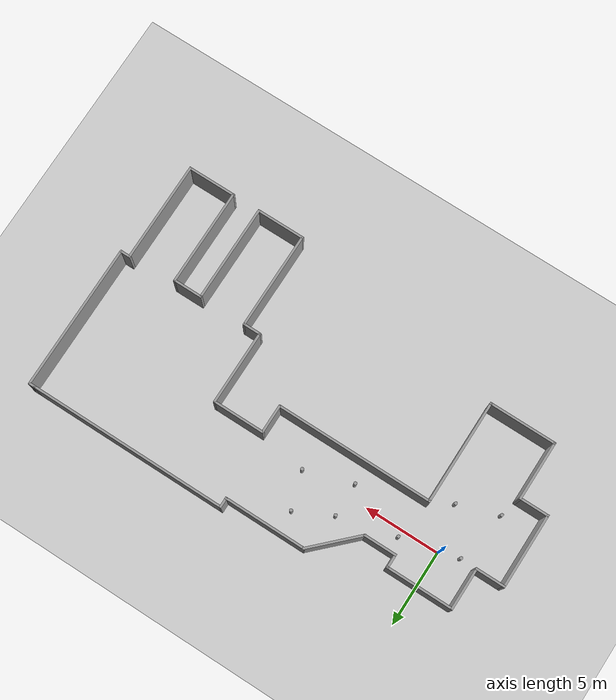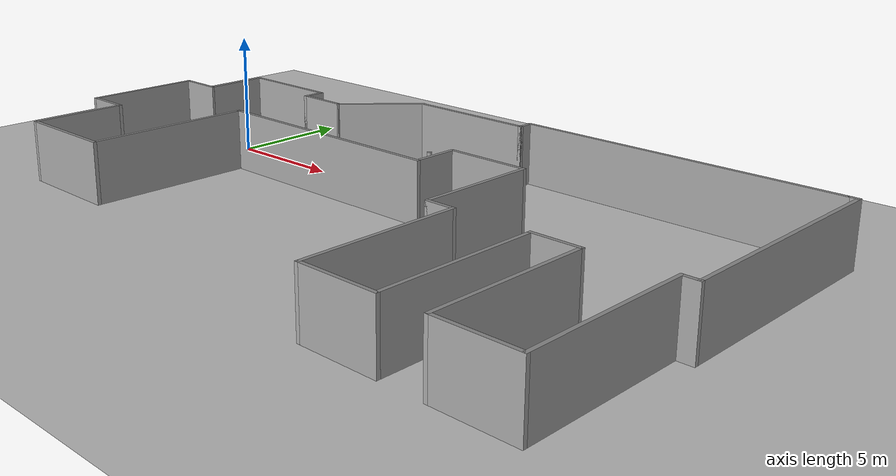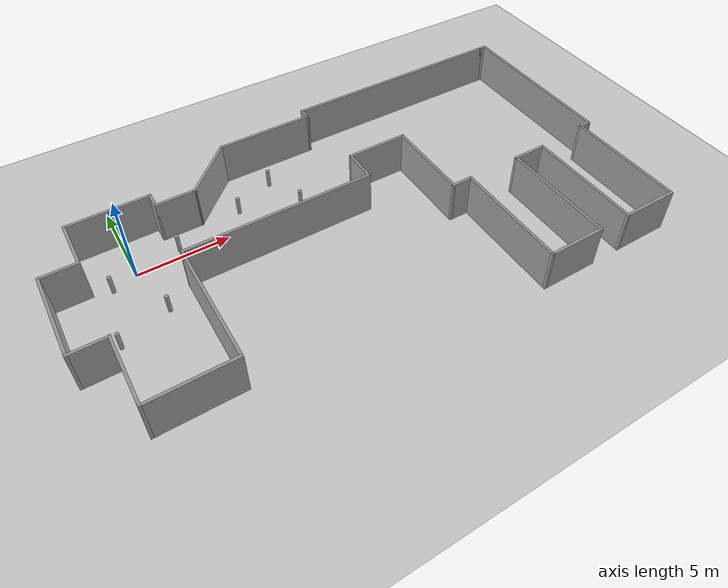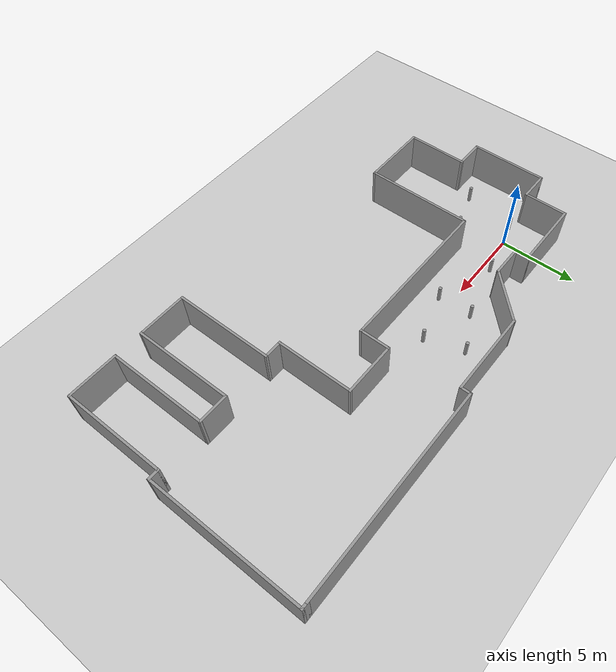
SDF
<sdf version="1.6">
 <world name="default">
  <model name="ground_plane">
   <static>1</static>
   <link name="link">
    <collision name="collision">
     <geometry><plane><normal>0 0 1</normal><size>100 100</size></plane></geometry>
     <surface>
      <contact><collide_bitmask>65535</collide_bitmask></contact>
      <friction><ode><mu>100</mu><mu2>50</mu2></ode></friction>
     </surface>
    </collision>
    <visual name="visual">
     <cast_shadows>0</cast_shadows>
     <geometry><plane><normal>0 0 1</normal><size>100 100</size></plane></geometry>
     <material>
      <script><uri>file://media/materials/scripts/gazebo.material</uri><name>Gazebo/Grey</name></script>
     </material>
    </visual>
   </link>
  </model>
  <model name="hospitalMel">
   <pose>10.7024 -3.26958 0 0 -0 0</pose>
   <link name="Wall_0">
    <collision name="Wall_0_Collision">
     <geometry><box><size>2.75 0.15 2.5</size></box></geometry>
     <pose>0 0 1.25 0 -0 0</pose>
    </collision>
    <visual name="Wall_0_Visual">
     <pose>0 0 1.25 0 -0 0</pose>
     <geometry><box><size>2.75 0.15 2.5</size></box></geometry>
     <material>
      <script><uri>file://media/materials/scripts/gazebo.material</uri><name>Gazebo/Grey</name></script>
      <ambient>1 1 1 1</ambient>
     </material>
     <meta><layer>0</layer></meta>
    </visual>
    <pose>-12.9706 4.50442 0 0 -0 1.5708</pose>
   </link>
   <link name="Wall_10">
    <collision name="Wall_10_Collision">
     <geometry><box><size>13.25 0.15 2.5</size></box></geometry>
     <pose>0 0 1.25 0 -0 0</pose>
    </collision>
    <visual name="Wall_10_Visual">
     <pose>0 0 1.25 0 -0 0</pose>
     <geometry><box><size>13.25 0.15 2.5</size></box></geometry>
     <material>
      <script><uri>file://media/materials/scripts/gazebo.material</uri><name>Gazebo/Grey</name></script>
      <ambient>1 1 1 1</ambient>
     </material>
     <meta><layer>0</layer></meta>
    </visual>
    <pose>7.925 8.1 0 0 -0 0</pose>
   </link>
   <link name="Wall_16">
    <collision name="Wall_16_Collision">
     <geometry><box><size>0.5 0.15 2.5</size></box></geometry>
     <pose>0 0 1.25 0 -0 0</pose>
    </collision>
    <visual name="Wall_16_Visual">
     <pose>0 0 1.25 0 -0 0</pose>
     <geometry><box><size>0.5 0.15 2.5</size></box></geometry>
     <material>
      <script><uri>file://media/materials/scripts/gazebo.material</uri><name>Gazebo/Grey</name></script>
      <ambient>1 1 1 1</ambient>
     </material>
     <meta><layer>0</layer></meta>
    </visual>
    <pose>14.65 8.1 0 0 -0 0</pose>
   </link>
   <link name="Wall_18">
    <collision name="Wall_18_Collision">
     <geometry><box><size>9.75 0.15 2.5</size></box></geometry>
     <pose>0 0 1.25 0 -0 0</pose>
    </collision>
    <visual name="Wall_18_Visual">
     <pose>0 0 1.25 0 -0 0</pose>
     <geometry><box><size>9.75 0.15 2.5</size></box></geometry>
     <material>
      <script><uri>file://media/materials/scripts/gazebo.material</uri><name>Gazebo/Grey</name></script>
      <ambient>1 1 1 1</ambient>
     </material>
     <meta><layer>0</layer></meta>
    </visual>
    <pose>14.825 3.3 0 0 -0 -1.5708</pose>
   </link>
   <link name="Wall_19">
    <collision name="Wall_19_Collision">
     <geometry><box><size>0.75 0.15 2.5</size></box></geometry>
     <pose>0 0 1.25 0 -0 0</pose>
    </collision>
    <visual name="Wall_19_Visual">
     <pose>0 0 1.25 0 -0 0</pose>
     <geometry><box><size>0.75 0.15 2.5</size></box></geometry>
     <material>
      <script><uri>file://media/materials/scripts/gazebo.material</uri><name>Gazebo/Grey</name></script>
      <ambient>1 1 1 1</ambient>
     </material>
     <meta><layer>0</layer></meta>
    </visual>
    <pose>14.525 -1.5 0 0 -0 3.14159</pose>
   </link>
   <link name="Wall_21">
    <collision name="Wall_21_Collision">
     <geometry><box><size>6.75 0.15 2.5</size></box></geometry>
     <pose>0 0 1.25 0 -0 0</pose>
    </collision>
    <visual name="Wall_21_Visual">
     <pose>0 0 1.25 0 -0 0</pose>
     <geometry><box><size>6.75 0.15 2.5</size></box></geometry>
     <material>
      <script><uri>file://media/materials/scripts/gazebo.material</uri><name>Gazebo/Grey</name></script>
      <ambient>1 1 1 1</ambient>
     </material>
     <meta><layer>0</layer></meta>
    </visual>
    <pose>14.225 -4.8 0 0 -0 -1.5708</pose>
   </link>
   <link name="Wall_22">
    <collision name="Wall_22_Collision">
     <geometry><box><size>3.25 0.15 2.5</size></box></geometry>
     <pose>0 0 1.25 0 -0 0</pose>
    </collision>
    <visual name="Wall_22_Visual">
     <pose>0 0 1.25 0 -0 0</pose>
     <geometry><box><size>3.25 0.15 2.5</size></box></geometry>
     <material>
      <script><uri>file://media/materials/scripts/gazebo.material</uri><name>Gazebo/Grey</name></script>
      <ambient>1 1 1 1</ambient>
     </material>
     <meta><layer>0</layer></meta>
    </visual>
    <pose>12.675 -8.1 0 0 -0 3.14159</pose>
   </link>
   <link name="Wall_23">
    <collision name="Wall_23_Collision">
     <geometry><box><size>6.5 0.15 2.5</size></box></geometry>
     <pose>0 0 1.25 0 -0 0</pose>
    </collision>
    <visual name="Wall_23_Visual">
     <pose>0 0 1.25 0 -0 0</pose>
     <geometry><box><size>6.5 0.15 2.5</size></box></geometry>
     <material>
      <script><uri>file://media/materials/scripts/gazebo.material</uri><name>Gazebo/Grey</name></script>
      <ambient>1 1 1 1</ambient>
     </material>
     <meta><layer>0</layer></meta>
    </visual>
    <pose>11.125 -4.925 0 0 -0 1.5708</pose>
   </link>
   <link name="Wall_24">
    <collision name="Wall_24_Collision">
     <geometry><box><size>2 0.15 2.5</size></box></geometry>
     <pose>0 0 1.25 0 -0 0</pose>
    </collision>
    <visual name="Wall_24_Visual">
     <pose>0 0 1.25 0 -0 0</pose>
     <geometry><box><size>2 0.15 2.5</size></box></geometry>
     <material>
      <script><uri>file://media/materials/scripts/gazebo.material</uri><name>Gazebo/Grey</name></script>
      <ambient>1 1 1 1</ambient>
     </material>
     <meta><layer>0</layer></meta>
    </visual>
    <pose>10.2 -1.75 0 0 -0 3.14159</pose>
   </link>
   <link name="Wall_25">
    <collision name="Wall_25_Collision">
     <geometry><box><size>6.5 0.15 2.5</size></box></geometry>
     <pose>0 0 1.25 0 -0 0</pose>
    </collision>
    <visual name="Wall_25_Visual">
     <pose>0 0 1.25 0 -0 0</pose>
     <geometry><box><size>6.5 0.15 2.5</size></box></geometry>
     <material>
      <script><uri>file://media/materials/scripts/gazebo.material</uri><name>Gazebo/Grey</name></script>
      <ambient>1 1 1 1</ambient>
     </material>
     <meta><layer>0</layer></meta>
    </visual>
    <pose>9.275 -4.925 0 0 -0 -1.5708</pose>
   </link>
   <link name="Wall_26">
    <collision name="Wall_26_Collision">
     <geometry><box><size>3.25 0.15 2.5</size></box></geometry>
     <pose>0 0 1.25 0 -0 0</pose>
    </collision>
    <visual name="Wall_26_Visual">
     <pose>0 0 1.25 0 -0 0</pose>
     <geometry><box><size>3.25 0.15 2.5</size></box></geometry>
     <material>
      <script><uri>file://media/materials/scripts/gazebo.material</uri><name>Gazebo/Grey</name></script>
      <ambient>1 1 1 1</ambient>
     </material>
     <meta><layer>0</layer></meta>
    </visual>
    <pose>7.725 -8.1 0 0 -0 3.14159</pose>
   </link>
   <link name="Wall_27">
    <collision name="Wall_27_Collision">
     <geometry><box><size>6.5 0.15 2.5</size></box></geometry>
     <pose>0 0 1.25 0 -0 0</pose>
    </collision>
    <visual name="Wall_27_Visual">
     <pose>0 0 1.25 0 -0 0</pose>
     <geometry><box><size>6.5 0.15 2.5</size></box></geometry>
     <material>
      <script><uri>file://media/materials/scripts/gazebo.material</uri><name>Gazebo/Grey</name></script>
      <ambient>1 1 1 1</ambient>
     </material>
     <meta><layer>0</layer></meta>
    </visual>
    <pose>6.175 -4.925 0 0 -0 1.5708</pose>
   </link>
   <link name="Wall_28">
    <collision name="Wall_28_Collision">
     <geometry><box><size>1.25 0.15 2.5</size></box></geometry>
     <pose>0 0 1.25 0 -0 0</pose>
    </collision>
    <visual name="Wall_28_Visual">
     <pose>0 0 1.25 0 -0 0</pose>
     <geometry><box><size>1.25 0.15 2.5</size></box></geometry>
     <material>
      <script><uri>file://media/materials/scripts/gazebo.material</uri><name>Gazebo/Grey</name></script>
      <ambient>1 1 1 1</ambient>
     </material>
     <meta><layer>0</layer></meta>
    </visual>
    <pose>5.625 -1.75 0 0 -0 3.14159</pose>
   </link>
   <link name="Wall_29">
    <collision name="Wall_29_Collision">
     <geometry><box><size>5 0.15 2.5</size></box></geometry>
     <pose>0 0 1.25 0 -0 0</pose>
    </collision>
    <visual name="Wall_29_Visual">
     <pose>0 0 1.25 0 -0 0</pose>
     <geometry><box><size>5 0.15 2.5</size></box></geometry>
     <material>
      <script><uri>file://media/materials/scripts/gazebo.material</uri><name>Gazebo/Grey</name></script>
      <ambient>1 1 1 1</ambient>
     </material>
     <meta><layer>0</layer></meta>
    </visual>
    <pose>5.075 0.675 0 0 -0 1.5708</pose>
   </link>
   <link name="Wall_3">
    <collision name="Wall_3_Collision">
     <geometry><box><size>4.5 0.15 2.5</size></box></geometry>
     <pose>0 0 1.25 0 -0 0</pose>
    </collision>
    <visual name="Wall_3_Visual">
     <pose>0 0 1.25 0 -0 0</pose>
     <geometry><box><size>4.5 0.15 2.5</size></box></geometry>
     <material>
      <script><uri>file://media/materials/scripts/gazebo.material</uri><name>Gazebo/Grey</name></script>
      <ambient>1 1 1 1</ambient>
     </material>
     <meta><layer>0</layer></meta>
    </visual>
    <pose>-10.7956 5.80442 0 0 -0 0</pose>
   </link>
   <link name="Wall_30">
    <collision name="Wall_30_Collision">
     <geometry><box><size>3.5 0.15 2.5</size></box></geometry>
     <pose>0 0 1.25 0 -0 0</pose>
    </collision>
    <visual name="Wall_30_Visual">
     <pose>0 0 1.25 0 -0 0</pose>
     <geometry><box><size>3.5 0.15 2.5</size></box></geometry>
     <material>
      <script><uri>file://media/materials/scripts/gazebo.material</uri><name>Gazebo/Grey</name></script>
      <ambient>1 1 1 1</ambient>
     </material>
     <meta><layer>0</layer></meta>
    </visual>
    <pose>3.4 3.1 0 0 -0 3.14159</pose>
   </link>
   <link name="Wall_31">
    <collision name="Wall_31_Collision">
     <geometry><box><size>2 0.15 2.5</size></box></geometry>
     <pose>0 0 1.25 0 -0 0</pose>
    </collision>
    <visual name="Wall_31_Visual">
     <pose>0 0 1.25 0 -0 0</pose>
     <geometry><box><size>2 0.15 2.5</size></box></geometry>
     <material>
      <script><uri>file://media/materials/scripts/gazebo.material</uri><name>Gazebo/Grey</name></script>
      <ambient>1 1 1 1</ambient>
     </material>
     <meta><layer>0</layer></meta>
    </visual>
    <pose>1.725 2.175 0 0 -0 -1.5708</pose>
   </link>
   <link name="Wall_32">
    <collision name="Wall_32_Collision">
     <geometry><box><size>10.5 0.15 2.5</size></box></geometry>
     <pose>0 0 1.25 0 -0 0</pose>
    </collision>
    <visual name="Wall_32_Visual">
     <pose>0 0 1.25 0 -0 0</pose>
     <geometry><box><size>10.5 0.15 2.5</size></box></geometry>
     <material>
      <script><uri>file://media/materials/scripts/gazebo.material</uri><name>Gazebo/Grey</name></script>
      <ambient>1 1 1 1</ambient>
     </material>
     <meta><layer>0</layer></meta>
    </visual>
    <pose>-3.45 1.25 0 0 -0 3.14159</pose>
   </link>
   <link name="Wall_33">
    <collision name="Wall_33_Collision">
     <geometry><box><size>7 0.15 2.5</size></box></geometry>
     <pose>0 0 1.25 0 -0 0</pose>
    </collision>
    <visual name="Wall_33_Visual">
     <pose>0 0 1.25 0 -0 0</pose>
     <geometry><box><size>7 0.15 2.5</size></box></geometry>
     <material>
      <script><uri>file://media/materials/scripts/gazebo.material</uri><name>Gazebo/Grey</name></script>
      <ambient>1 1 1 1</ambient>
     </material>
     <meta><layer>0</layer></meta>
    </visual>
    <pose>-8.625 -2.175 0 0 -0 -1.5708</pose>
   </link>
   <link name="Wall_34">
    <collision name="Wall_34_Collision">
     <geometry><box><size>4.5 0.15 2.5</size></box></geometry>
     <pose>0 0 1.25 0 -0 0</pose>
    </collision>
    <visual name="Wall_34_Visual">
     <pose>0 0 1.25 0 -0 0</pose>
     <geometry><box><size>4.5 0.15 2.5</size></box></geometry>
     <material>
      <script><uri>file://media/materials/scripts/gazebo.material</uri><name>Gazebo/Grey</name></script>
      <ambient>1 1 1 1</ambient>
     </material>
     <meta><layer>0</layer></meta>
    </visual>
    <pose>-10.8 -5.6 0 0 -0 3.14159</pose>
   </link>
   <link name="Wall_35">
    <collision name="Wall_35_Collision">
     <geometry><box><size>4 0.15 2.5</size></box></geometry>
     <pose>0 0 1.25 0 -0 0</pose>
    </collision>
    <visual name="Wall_35_Visual">
     <pose>0 0 1.25 0 -0 0</pose>
     <geometry><box><size>4 0.15 2.5</size></box></geometry>
     <material>
      <script><uri>file://media/materials/scripts/gazebo.material</uri><name>Gazebo/Grey</name></script>
      <ambient>1 1 1 1</ambient>
     </material>
     <meta><layer>0</layer></meta>
    </visual>
    <pose>-12.975 -3.675 0 0 -0 1.5708</pose>
   </link>
   <link name="Wall_36">
    <collision name="Wall_36_Collision">
     <geometry><box><size>2 0.15 2.5</size></box></geometry>
     <pose>0 0 1.25 0 -0 0</pose>
    </collision>
    <visual name="Wall_36_Visual">
     <pose>0 0 1.25 0 -0 0</pose>
     <geometry><box><size>2 0.15 2.5</size></box></geometry>
     <material>
      <script><uri>file://media/materials/scripts/gazebo.material</uri><name>Gazebo/Grey</name></script>
      <ambient>1 1 1 1</ambient>
     </material>
     <meta><layer>0</layer></meta>
    </visual>
    <pose>-13.9 -1.75 0 0 -0 3.14159</pose>
   </link>
   <link name="Wall_37">
    <collision name="Wall_37_Collision">
     <geometry><box><size>5 0.15 2.5</size></box></geometry>
     <pose>0 0 1.25 0 -0 0</pose>
    </collision>
    <visual name="Wall_37_Visual">
     <pose>0 0 1.25 0 -0 0</pose>
     <geometry><box><size>5 0.15 2.5</size></box></geometry>
     <material>
      <script><uri>file://media/materials/scripts/gazebo.material</uri><name>Gazebo/Grey</name></script>
      <ambient>1 1 1 1</ambient>
     </material>
     <meta><layer>0</layer></meta>
    </visual>
    <pose>-14.825 0.675 0 0 -0 1.5708</pose>
   </link>
   <link name="Wall_39">
    <collision name="Wall_39_Collision">
     <geometry><box><size>2 0.15 2.5</size></box></geometry>
     <pose>0 0 1.25 0 -0 0</pose>
    </collision>
    <visual name="Wall_39_Visual">
     <pose>0 0 1.25 0 -0 0</pose>
     <geometry><box><size>2 0.15 2.5</size></box></geometry>
     <material>
      <script><uri>file://media/materials/scripts/gazebo.material</uri><name>Gazebo/Grey</name></script>
      <ambient>1 1 1 1</ambient>
     </material>
     <meta><layer>0</layer></meta>
    </visual>
    <pose>-13.9 3.1 0 0 -0 0</pose>
   </link>
   <link name="Wall_4">
    <collision name="Wall_4_Collision">
     <geometry><box><size>1 0.15 2.5</size></box></geometry>
     <pose>0 0 1.25 0 -0 0</pose>
    </collision>
    <visual name="Wall_4_Visual">
     <pose>0 0 1.25 0 -0 0</pose>
     <geometry><box><size>1 0.15 2.5</size></box></geometry>
     <material>
      <script><uri>file://media/materials/scripts/gazebo.material</uri><name>Gazebo/Grey</name></script>
      <ambient>1 1 1 1</ambient>
     </material>
     <meta><layer>0</layer></meta>
    </visual>
    <pose>-8.62058 5.37942 0 0 -0 -1.5708</pose>
   </link>
   <link name="Wall_5">
    <collision name="Wall_5_Collision">
     <geometry><box><size>2.25 0.15 2.5</size></box></geometry>
     <pose>0 0 1.25 0 -0 0</pose>
    </collision>
    <visual name="Wall_5_Visual">
     <pose>0 0 1.25 0 -0 0</pose>
     <geometry><box><size>2.25 0.15 2.5</size></box></geometry>
     <material>
      <script><uri>file://media/materials/scripts/gazebo.material</uri><name>Gazebo/Grey</name></script>
      <ambient>1 1 1 1</ambient>
     </material>
     <meta><layer>0</layer></meta>
    </visual>
    <pose>-7.57058 4.95442 0 0 -0 0</pose>
   </link>
   <link name="Wall_6">
    <collision name="Wall_6_Collision">
     <geometry><box><size>3.75 0.15 2.5</size></box></geometry>
     <pose>0 0 1.25 0 -0 0</pose>
    </collision>
    <visual name="Wall_6_Visual">
     <pose>0 0 1.25 0 -0 0</pose>
     <geometry><box><size>3.75 0.15 2.5</size></box></geometry>
     <material>
      <script><uri>file://media/materials/scripts/gazebo.material</uri><name>Gazebo/Grey</name></script>
      <ambient>1 1 1 1</ambient>
     </material>
     <meta><layer>0</layer></meta>
    </visual>
    <pose>-5.24779 6.22721 0 0 -0 0.785398</pose>
   </link>
   <link name="Wall_7">
    <collision name="Wall_7_Collision">
     <geometry><box><size>5.5 0.15 2.5</size></box></geometry>
     <pose>0 0 1.25 0 -0 0</pose>
    </collision>
    <visual name="Wall_7_Visual">
     <pose>0 0 1.25 0 -0 0</pose>
     <geometry><box><size>5.5 0.15 2.5</size></box></geometry>
     <material>
      <script><uri>file://media/materials/scripts/gazebo.material</uri><name>Gazebo/Grey</name></script>
      <ambient>1 1 1 1</ambient>
     </material>
     <meta><layer>0</layer></meta>
    </visual>
    <pose>-1.3 7.5 0 0 -0 0</pose>
   </link>
   <link name="Wall_9">
    <collision name="Wall_9_Collision">
     <geometry><box><size>0.75 0.15 2.5</size></box></geometry>
     <pose>0 0 1.25 0 -0 0</pose>
    </collision>
    <visual name="Wall_9_Visual">
     <pose>0 0 1.25 0 -0 0</pose>
     <geometry><box><size>0.75 0.15 2.5</size></box></geometry>
     <material>
      <script><uri>file://media/materials/scripts/gazebo.material</uri><name>Gazebo/Grey</name></script>
      <ambient>1 1 1 1</ambient>
     </material>
     <meta><layer>0</layer></meta>
    </visual>
    <pose>1.375 7.8 0 0 -0 1.5708</pose>
   </link>
   <static>1</static>
  </model>
  <model name="poleStat">
   <link name="link">
    <inertial>
     <mass>0.0953443</mass>
     <inertia>
      <ixx>0.0359089</ixx>
      <ixy>0</ixy>
      <ixz>0</ixz>
      <iyy>0.0359089</iyy>
      <iyz>0</iyz>
      <izz>0.000536427</izz>
     </inertia>
    </inertial>
    <visual name="visual">
     <geometry><cylinder><radius>0.106077</radius><length>2.11795</length></cylinder></geometry>
     <material>
      <script><name>Gazebo/Grey</name><uri>file://media/materials/scripts/gazebo.material</uri></script>
     </material>
    </visual>
    <collision name="collision">
     <geometry><cylinder><radius>0.106077</radius><length>2.11795</length></cylinder></geometry>
     <surface>
      <friction>
       <ode><mu>1</mu><mu2>1</mu2><fdir1>0 0 0</fdir1><slip1>0</slip1><slip2>0</slip2></ode>
       <torsional>
        <coefficient>1</coefficient>
        <patch_radius>0</patch_radius>
        <surface_radius>0</surface_radius>
        <use_patch_radius>1</use_patch_radius>
        <ode><slip>0</slip></ode>
       </torsional>
      </friction>
      <bounce><restitution_coefficient>0</restitution_coefficient><threshold>1e+06</threshold></bounce>
      <contact>
       <collide_without_contact>0</collide_without_contact>
       <collide_without_contact_bitmask>1</collide_without_contact_bitmask>
       <collide_bitmask>1</collide_bitmask>
       <ode>
        <soft_cfm>0</soft_cfm>
        <soft_erp>0.2</soft_erp>
        <kp>1e+13</kp>
        <kd>1</kd>
        <max_vel>0.01</max_vel>
        <min_depth>0</min_depth>
       </ode>
       <bullet>
        <split_impulse>1</split_impulse>
        <split_impulse_penetration_threshold>-0.01</split_impulse_penetration_threshold>
        <soft_cfm>0</soft_cfm>
        <soft_erp>0.2</soft_erp>
        <kp>1e+13</kp>
        <kd>1</kd>
       </bullet>
      </contact>
     </surface>
    </collision>
   </link>
   <static>1</static>
   <pose>0.680309 -2.96315 0 0 -0 0</pose>
  </model>
  <model name="poleStat_0">
   <link name="link">
    <inertial>
     <mass>0.0953443</mass>
     <inertia>
      <ixx>0.0359089</ixx>
      <ixy>0</ixy>
      <ixz>0</ixz>
      <iyy>0.0359089</iyy>
      <iyz>0</iyz>
      <izz>0.000536427</izz>
     </inertia>
    </inertial>
    <visual name="visual">
     <geometry><cylinder><radius>0.106077</radius><length>2.11795</length></cylinder></geometry>
     <material>
      <script><name>Gazebo/Grey</name><uri>file://media/materials/scripts/gazebo.material</uri></script>
     </material>
    </visual>
    <collision name="collision">
     <geometry><cylinder><radius>0.106077</radius><length>2.11795</length></cylinder></geometry>
     <surface>
      <friction>
       <ode><mu>1</mu><mu2>1</mu2><fdir1>0 0 0</fdir1><slip1>0</slip1><slip2>0</slip2></ode>
       <torsional>
        <coefficient>1</coefficient>
        <patch_radius>0</patch_radius>
        <surface_radius>0</surface_radius>
        <use_patch_radius>1</use_patch_radius>
        <ode><slip>0</slip></ode>
       </torsional>
      </friction>
      <bounce><restitution_coefficient>0</restitution_coefficient><threshold>1e+06</threshold></bounce>
      <contact>
       <collide_without_contact>0</collide_without_contact>
       <collide_without_contact_bitmask>1</collide_without_contact_bitmask>
       <collide_bitmask>1</collide_bitmask>
       <ode>
        <soft_cfm>0</soft_cfm>
        <soft_erp>0.2</soft_erp>
        <kp>1e+13</kp>
        <kd>1</kd>
        <max_vel>0.01</max_vel>
        <min_depth>0</min_depth>
       </ode>
       <bullet>
        <split_impulse>1</split_impulse>
        <split_impulse_penetration_threshold>-0.01</split_impulse_penetration_threshold>
        <soft_cfm>0</soft_cfm>
        <soft_erp>0.2</soft_erp>
        <kp>1e+13</kp>
        <kd>1</kd>
       </bullet>
      </contact>
     </surface>
    </collision>
   </link>
   <static>1</static>
   <pose>-1.27973 -0.390363 0 0 -0 0</pose>
  </model>
  <model name="poleStat_1">
   <link name="link">
    <inertial>
     <mass>0.0953443</mass>
     <inertia>
      <ixx>0.0359089</ixx>
      <ixy>0</ixy>
      <ixz>0</ixz>
      <iyy>0.0359089</iyy>
      <iyz>0</iyz>
      <izz>0.000536427</izz>
     </inertia>
    </inertial>
    <visual name="visual">
     <geometry><cylinder><radius>0.106077</radius><length>2.11795</length></cylinder></geometry>
     <material>
      <script><name>Gazebo/Grey</name><uri>file://media/materials/scripts/gazebo.material</uri></script>
     </material>
    </visual>
    <collision name="collision">
     <geometry><cylinder><radius>0.106077</radius><length>2.11795</length></cylinder></geometry>
     <surface>
      <friction>
       <ode><mu>1</mu><mu2>1</mu2><fdir1>0 0 0</fdir1><slip1>0</slip1><slip2>0</slip2></ode>
       <torsional>
        <coefficient>1</coefficient>
        <patch_radius>0</patch_radius>
        <surface_radius>0</surface_radius>
        <use_patch_radius>1</use_patch_radius>
        <ode><slip>0</slip></ode>
       </torsional>
      </friction>
      <bounce><restitution_coefficient>0</restitution_coefficient><threshold>1e+06</threshold></bounce>
      <contact>
       <collide_without_contact>0</collide_without_contact>
       <collide_without_contact_bitmask>1</collide_without_contact_bitmask>
       <collide_bitmask>1</collide_bitmask>
       <ode>
        <soft_cfm>0</soft_cfm>
        <soft_erp>0.2</soft_erp>
        <kp>1e+13</kp>
        <kd>1</kd>
        <max_vel>0.01</max_vel>
        <min_depth>0</min_depth>
       </ode>
       <bullet>
        <split_impulse>1</split_impulse>
        <split_impulse_penetration_threshold>-0.01</split_impulse_penetration_threshold>
        <soft_cfm>0</soft_cfm>
        <soft_erp>0.2</soft_erp>
        <kp>1e+13</kp>
        <kd>1</kd>
       </bullet>
      </contact>
     </surface>
    </collision>
   </link>
   <static>1</static>
   <pose>2.48293 0.516175 0 0 -0 0</pose>
  </model>
  <model name="poleStat_2">
   <link name="link">
    <inertial>
     <mass>0.0953443</mass>
     <inertia>
      <ixx>0.0359089</ixx>
      <ixy>0</ixy>
      <ixz>0</ixz>
      <iyy>0.0359089</iyy>
      <iyz>0</iyz>
      <izz>0.000536427</izz>
     </inertia>
    </inertial>
    <visual name="visual">
     <geometry><cylinder><radius>0.106077</radius><length>2.11795</length></cylinder></geometry>
     <material>
      <script><name>Gazebo/Grey</name><uri>file://media/materials/scripts/gazebo.material</uri></script>
     </material>
    </visual>
    <collision name="collision">
     <geometry><cylinder><radius>0.106077</radius><length>2.11795</length></cylinder></geometry>
     <surface>
      <friction>
       <ode><mu>1</mu><mu2>1</mu2><fdir1>0 0 0</fdir1><slip1>0</slip1><slip2>0</slip2></ode>
       <torsional>
        <coefficient>1</coefficient>
        <patch_radius>0</patch_radius>
        <surface_radius>0</surface_radius>
        <use_patch_radius>1</use_patch_radius>
        <ode><slip>0</slip></ode>
       </torsional>
      </friction>
      <bounce><restitution_coefficient>0</restitution_coefficient><threshold>1e+06</threshold></bounce>
      <contact>
       <collide_without_contact>0</collide_without_contact>
       <collide_without_contact_bitmask>1</collide_without_contact_bitmask>
       <collide_bitmask>1</collide_bitmask>
       <ode>
        <soft_cfm>0</soft_cfm>
        <soft_erp>0.2</soft_erp>
        <kp>1e+13</kp>
        <kd>1</kd>
        <max_vel>0.01</max_vel>
        <min_depth>0</min_depth>
       </ode>
       <bullet>
        <split_impulse>1</split_impulse>
        <split_impulse_penetration_threshold>-0.01</split_impulse_penetration_threshold>
        <soft_cfm>0</soft_cfm>
        <soft_erp>0.2</soft_erp>
        <kp>1e+13</kp>
        <kd>1</kd>
       </bullet>
      </contact>
     </surface>
    </collision>
   </link>
   <static>1</static>
   <pose>6.29427 -0.757488 0 0 -0 0</pose>
  </model>
  <model name="poleStat_3">
   <link name="link">
    <inertial>
     <mass>0.0953443</mass>
     <inertia>
      <ixx>0.0359089</ixx>
      <ixy>0</ixy>
      <ixz>0</ixz>
      <iyy>0.0359089</iyy>
      <iyz>0</iyz>
      <izz>0.000536427</izz>
     </inertia>
    </inertial>
    <visual name="visual">
     <geometry><cylinder><radius>0.106077</radius><length>2.11795</length></cylinder></geometry>
     <material>
      <script><name>Gazebo/Grey</name><uri>file://media/materials/scripts/gazebo.material</uri></script>
     </material>
    </visual>
    <collision name="collision">
     <geometry><cylinder><radius>0.106077</radius><length>2.11795</length></cylinder></geometry>
     <surface>
      <friction>
       <ode><mu>1</mu><mu2>1</mu2><fdir1>0 0 0</fdir1><slip1>0</slip1><slip2>0</slip2></ode>
       <torsional>
        <coefficient>1</coefficient>
        <patch_radius>0</patch_radius>
        <surface_radius>0</surface_radius>
        <use_patch_radius>1</use_patch_radius>
        <ode><slip>0</slip></ode>
       </torsional>
      </friction>
      <bounce><restitution_coefficient>0</restitution_coefficient><threshold>1e+06</threshold></bounce>
      <contact>
       <collide_without_contact>0</collide_without_contact>
       <collide_without_contact_bitmask>1</collide_without_contact_bitmask>
       <collide_bitmask>1</collide_bitmask>
       <ode>
        <soft_cfm>0</soft_cfm>
        <soft_erp>0.2</soft_erp>
        <kp>1e+13</kp>
        <kd>1</kd>
        <max_vel>0.01</max_vel>
        <min_depth>0</min_depth>
       </ode>
       <bullet>
        <split_impulse>1</split_impulse>
        <split_impulse_penetration_threshold>-0.01</split_impulse_penetration_threshold>
        <soft_cfm>0</soft_cfm>
        <soft_erp>0.2</soft_erp>
        <kp>1e+13</kp>
        <kd>1</kd>
       </bullet>
      </contact>
     </surface>
    </collision>
   </link>
   <static>1</static>
   <pose>6.25864 1.46784 0 0 -0 0</pose>
  </model>
  <model name="poleStat_4">
   <link name="link">
    <inertial>
     <mass>0.0953443</mass>
     <inertia>
      <ixx>0.0359089</ixx>
      <ixy>0</ixy>
      <ixz>0</ixz>
      <iyy>0.0359089</iyy>
      <iyz>0</iyz>
      <izz>0.000536427</izz>
     </inertia>
    </inertial>
    <visual name="visual">
     <geometry><cylinder><radius>0.106077</radius><length>2.11795</length></cylinder></geometry>
     <material>
      <script><name>Gazebo/Grey</name><uri>file://media/materials/scripts/gazebo.material</uri></script>
     </material>
    </visual>
    <collision name="collision">
     <geometry><cylinder><radius>0.106077</radius><length>2.11795</length></cylinder></geometry>
     <surface>
      <friction>
       <ode><mu>1</mu><mu2>1</mu2><fdir1>0 0 0</fdir1><slip1>0</slip1><slip2>0</slip2></ode>
       <torsional>
        <coefficient>1</coefficient>
        <patch_radius>0</patch_radius>
        <surface_radius>0</surface_radius>
        <use_patch_radius>1</use_patch_radius>
        <ode><slip>0</slip></ode>
       </torsional>
      </friction>
      <bounce><restitution_coefficient>0</restitution_coefficient><threshold>1e+06</threshold></bounce>
      <contact>
       <collide_without_contact>0</collide_without_contact>
       <collide_without_contact_bitmask>1</collide_without_contact_bitmask>
       <collide_bitmask>1</collide_bitmask>
       <ode>
        <soft_cfm>0</soft_cfm>
        <soft_erp>0.2</soft_erp>
        <kp>1e+13</kp>
        <kd>1</kd>
        <max_vel>0.01</max_vel>
        <min_depth>0</min_depth>
       </ode>
       <bullet>
        <split_impulse>1</split_impulse>
        <split_impulse_penetration_threshold>-0.01</split_impulse_penetration_threshold>
        <soft_cfm>0</soft_cfm>
        <soft_erp>0.2</soft_erp>
        <kp>1e+13</kp>
        <kd>1</kd>
       </bullet>
      </contact>
     </surface>
    </collision>
   </link>
   <static>1</static>
   <pose>9.39923 0.230052 0 0 -0 0</pose>
  </model>
  <model name="poleStat_6">
   <link name="link">
    <inertial>
     <mass>0.0953443</mass>
     <inertia>
      <ixx>0.0359089</ixx>
      <ixy>0</ixy>
      <ixz>0</ixz>
      <iyy>0.0359089</iyy>
      <iyz>0</iyz>
      <izz>0.000536427</izz>
     </inertia>
    </inertial>
    <visual name="visual">
     <geometry><cylinder><radius>0.106077</radius><length>2.11795</length></cylinder></geometry>
     <material>
      <script><name>Gazebo/Grey</name><uri>file://media/materials/scripts/gazebo.material</uri></script>
     </material>
    </visual>
    <collision name="collision">
     <geometry><cylinder><radius>0.106077</radius><length>2.11795</length></cylinder></geometry>
     <surface>
      <friction>
       <ode><mu>1</mu><mu2>1</mu2><fdir1>0 0 0</fdir1><slip1>0</slip1><slip2>0</slip2></ode>
       <torsional>
        <coefficient>1</coefficient>
        <patch_radius>0</patch_radius>
        <surface_radius>0</surface_radius>
        <use_patch_radius>1</use_patch_radius>
        <ode><slip>0</slip></ode>
       </torsional>
      </friction>
      <bounce><restitution_coefficient>0</restitution_coefficient><threshold>1e+06</threshold></bounce>
      <contact>
       <collide_without_contact>0</collide_without_contact>
       <collide_without_contact_bitmask>1</collide_without_contact_bitmask>
       <collide_bitmask>1</collide_bitmask>
       <ode>
        <soft_cfm>0</soft_cfm>
        <soft_erp>0.2</soft_erp>
        <kp>1e+13</kp>
        <kd>1</kd>
        <max_vel>0.01</max_vel>
        <min_depth>0</min_depth>
       </ode>
       <bullet>
        <split_impulse>1</split_impulse>
        <split_impulse_penetration_threshold>-0.01</split_impulse_penetration_threshold>
        <soft_cfm>0</soft_cfm>
        <soft_erp>0.2</soft_erp>
        <kp>1e+13</kp>
        <kd>1</kd>
       </bullet>
      </contact>
     </surface>
    </collision>
   </link>
   <static>1</static>
   <pose>8.61747 2.6495 0 0 -0 0</pose>
  </model>
  <model name="poleStat_22">
   <link name="link">
    <inertial>
     <mass>0.0953443</mass>
     <inertia>
      <ixx>0.0359089</ixx>
      <ixy>0</ixy>
      <ixz>0</ixz>
      <iyy>0.0359089</iyy>
      <iyz>0</iyz>
      <izz>0.000536427</izz>
     </inertia>
    </inertial>
    <visual name="visual">
     <geometry><cylinder><radius>0.106077</radius><length>2.11795</length></cylinder></geometry>
     <material>
      <script><name>Gazebo/Grey</name><uri>file://media/materials/scripts/gazebo.material</uri></script>
     </material>
    </visual>
    <collision name="collision">
     <geometry><cylinder><radius>0.106077</radius><length>2.11795</length></cylinder></geometry>
     <surface>
      <friction>
       <ode><mu>1</mu><mu2>1</mu2><fdir1>0 0 0</fdir1><slip1>0</slip1><slip2>0</slip2></ode>
       <torsional>
        <coefficient>1</coefficient>
        <patch_radius>0</patch_radius>
        <surface_radius>0</surface_radius>
        <use_patch_radius>1</use_patch_radius>
        <ode><slip>0</slip></ode>
       </torsional>
      </friction>
      <bounce><restitution_coefficient>0</restitution_coefficient><threshold>1e+06</threshold></bounce>
      <contact>
       <collide_without_contact>0</collide_without_contact>
       <collide_without_contact_bitmask>1</collide_without_contact_bitmask>
       <collide_bitmask>1</collide_bitmask>
       <ode>
        <soft_cfm>0</soft_cfm>
        <soft_erp>0.2</soft_erp>
        <kp>1e+13</kp>
        <kd>1</kd>
        <max_vel>0.01</max_vel>
        <min_depth>0</min_depth>
       </ode>
       <bullet>
        <split_impulse>1</split_impulse>
        <split_impulse_penetration_threshold>-0.01</split_impulse_penetration_threshold>
        <soft_cfm>0</soft_cfm>
        <soft_erp>0.2</soft_erp>
        <kp>1e+13</kp>
        <kd>1</kd>
       </bullet>
      </contact>
     </surface>
    </collision>
   </link>
   <static>1</static>
   <pose>-1.96599 -3.85276 0 0 -0 0</pose>
  </model>
 </world>
</sdf>
